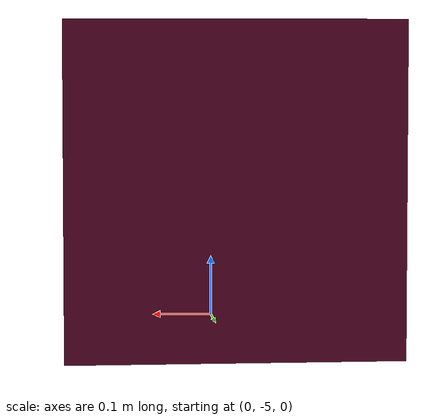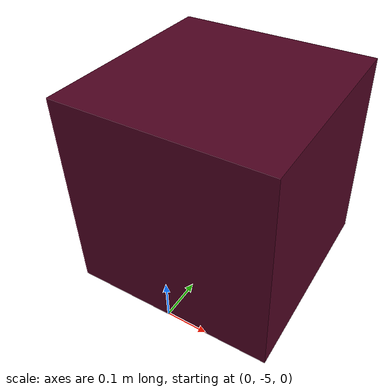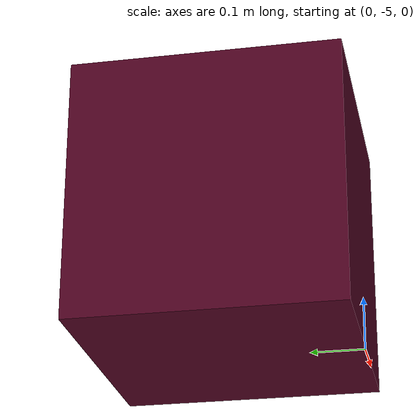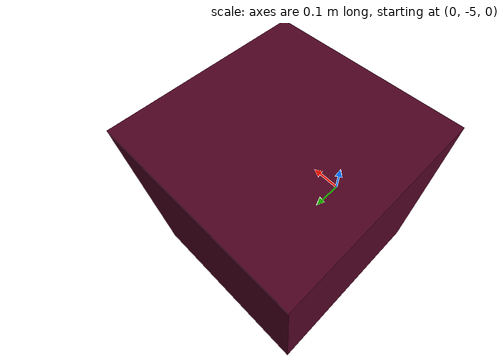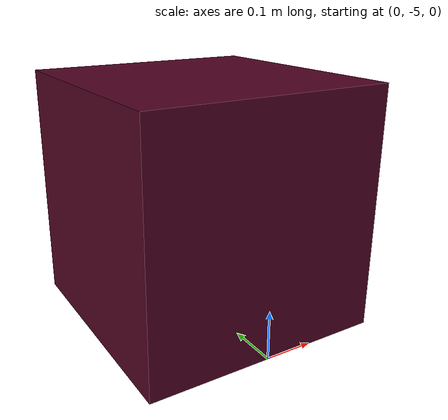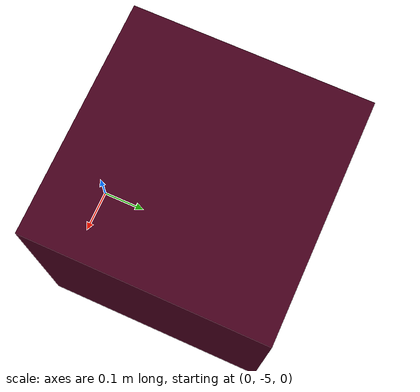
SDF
<?xml version="1.0"?>
<sdf version="1.7">
    <model name="foam_brick2">
        <link name="base_link">
            <inertial>
                <pose>0 -5 0.25 0 0 0 </pose>
                <mass>0</mass>
                <inertia>
                    <ixx>0</ixx>
                    <ixy>0</ixy>
                    <ixz>0</ixz>
                    <iyy>0</iyy>
                    <iyz>0</iyz>
                    <izz>0</izz>
                </inertia>
            </inertial>
            <visual name="base_link">
                <pose>0 -4.7511 0.25 0 0 0</pose>
                <geometry>
                    <box>
                        <size>0.5 0.5 0.5</size>
                    </box>
                </geometry>
                <material>
                    <diffuse>0.31 0.01 0.13 1.0</diffuse>
                </material>
            </visual>

        </link>
    </model>
</sdf>
